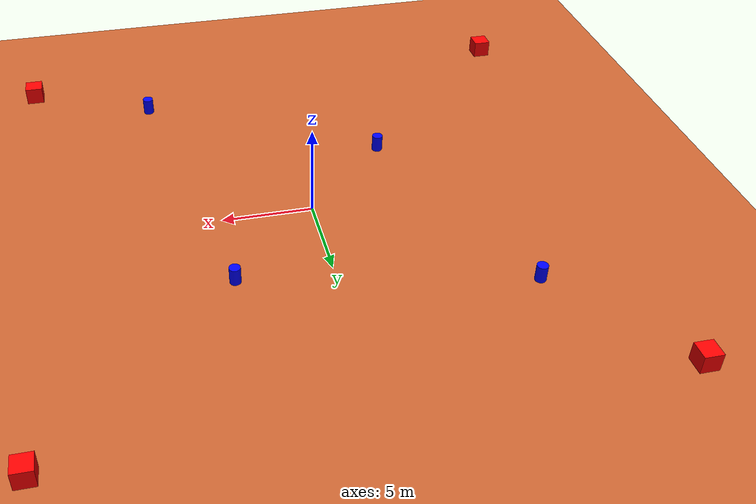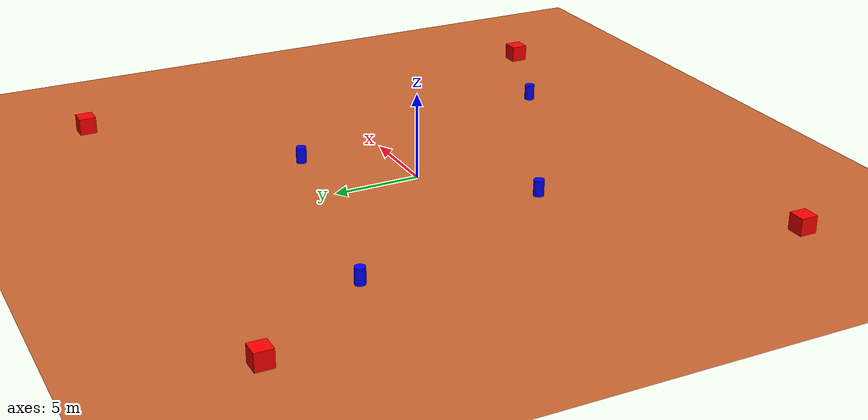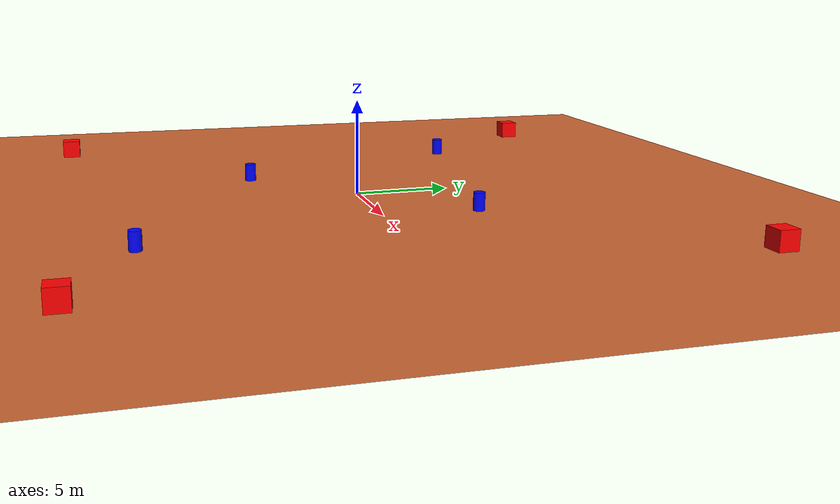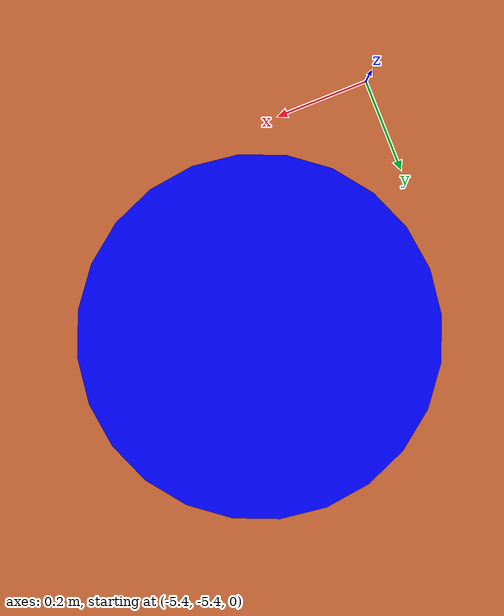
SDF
<sdf version="1.9">
 <world name="isro_mars">
  <physics name="1ms" type="ignored">
   <max_step_size>0.001</max_step_size>
   <real_time_factor>1.0</real_time_factor>
  </physics>
  <plugin filename="gz-sim-physics-system" name="gz::sim::systems::Physics"/>
  <plugin filename="gz-sim-user-commands-system" name="gz::sim::systems::UserCommands"/>
  <plugin filename="gz-sim-scene-broadcaster-system" name="gz::sim::systems::SceneBroadcaster"/>
  <plugin filename="gz-sim-sensors-system" name="gz::sim::systems::Sensors">
   <render_engine>ogre</render_engine>
  </plugin>
  <plugin filename="gz-sim-imu-system" name="gz::sim::systems::Imu"/>
  <scene><ambient>0.8 0.8 0.8 1.0</ambient><background>0.5 0.5 0.8 1.0</background></scene>
  <light type="directional" name="sun">
   <pose>0 0 10 0 0 0</pose>
   <diffuse>0.8 0.8 0.8 1</diffuse>
   <specular>0.2 0.2 0.2 1</specular>
   <attenuation>
    <range>1000</range>
    <constant>0.9</constant>
    <linear>0.01</linear>
    <quadratic>0.001</quadratic>
   </attenuation>
   <direction>-0.5 0.1 -0.9</direction>
  </light>
  <model name="ground_plane">
   <static>true</static>
   <link name="link">
    <collision name="collision">
     <geometry><plane><normal>0 0 1</normal><size>100 100</size></plane></geometry>
    </collision>
    <visual name="visual">
     <geometry><plane><normal>0 0 1</normal><size>100 100</size></plane></geometry>
     <material><ambient>0.8 0.4 0.2 1</ambient><diffuse>0.8 0.4 0.2 1</diffuse></material>
    </visual>
   </link>
  </model>
  <model name="marker_1">
   <pose>-15 -15 0.5 0 0 0</pose>
   <static>true</static>
   <link name="link">
    <visual name="visual">
     <geometry><box><size>1 1 1</size></box></geometry>
     <material><ambient>1 0 0 1</ambient><diffuse>1 0 0 1</diffuse></material>
    </visual>
   </link>
  </model>
  <model name="marker_2">
   <pose>15 -15 0.5 0 0 0</pose>
   <static>true</static>
   <link name="link">
    <visual name="visual">
     <geometry><box><size>1 1 1</size></box></geometry>
     <material><ambient>1 0 0 1</ambient><diffuse>1 0 0 1</diffuse></material>
    </visual>
   </link>
  </model>
  <model name="marker_3">
   <pose>15 15 0.5 0 0 0</pose>
   <static>true</static>
   <link name="link">
    <visual name="visual">
     <geometry><box><size>1 1 1</size></box></geometry>
     <material><ambient>1 0 0 1</ambient><diffuse>1 0 0 1</diffuse></material>
    </visual>
   </link>
  </model>
  <model name="marker_4">
   <pose>-15 15 0.5 0 0 0</pose>
   <static>true</static>
   <link name="link">
    <visual name="visual">
     <geometry><box><size>1 1 1</size></box></geometry>
     <material><ambient>1 0 0 1</ambient><diffuse>1 0 0 1</diffuse></material>
    </visual>
   </link>
  </model>
  <model name="human_1">
   <pose>5 5 0 0 0 0</pose>
   <static>true</static>
   <link name="link">
    <visual name="visual">
     <geometry><cylinder><radius>0.3</radius><length>1.8</length></cylinder></geometry>
     <material><ambient>0 0 1 1</ambient><diffuse>0 0 1 1</diffuse></material>
    </visual>
   </link>
  </model>
  <model name="human_2">
   <pose>-10 8 0 0 0 0</pose>
   <static>true</static>
   <link name="link">
    <visual name="visual">
     <geometry><cylinder><radius>0.3</radius><length>1.8</length></cylinder></geometry>
     <material><ambient>0 0 1 1</ambient><diffuse>0 0 1 1</diffuse></material>
    </visual>
   </link>
  </model>
  <model name="human_3">
   <pose>8 -12 0 0 0 0</pose>
   <static>true</static>
   <link name="link">
    <visual name="visual">
     <geometry><cylinder><radius>0.3</radius><length>1.8</length></cylinder></geometry>
     <material><ambient>0 0 1 1</ambient><diffuse>0 0 1 1</diffuse></material>
    </visual>
   </link>
  </model>
  <model name="human_4">
   <pose>-5 -5 0 0 0 0</pose>
   <static>true</static>
   <link name="link">
    <visual name="visual">
     <geometry><cylinder><radius>0.3</radius><length>1.8</length></cylinder></geometry>
     <material><ambient>0 0 1 1</ambient><diffuse>0 0 1 1</diffuse></material>
    </visual>
   </link>
  </model>
 </world>
</sdf>
